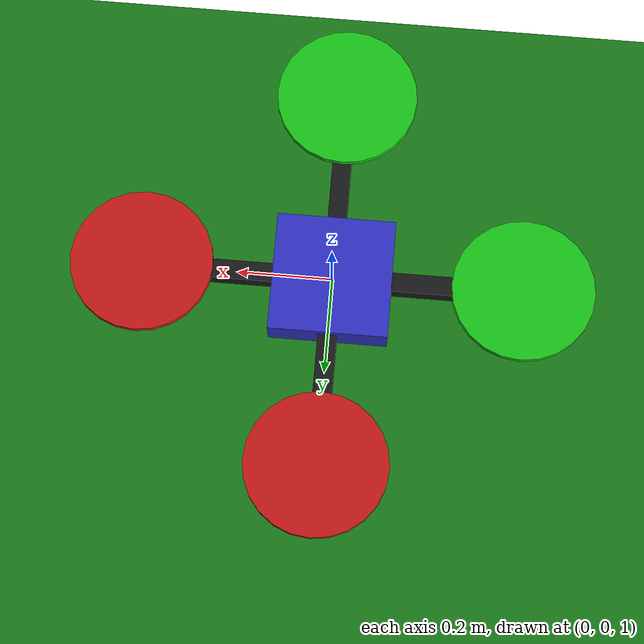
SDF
<?xml version="1.0"?>
<sdf version="1.9">
  <world name="quad_world">
    <physics name="1ms" type="ignored">
      <max_step_size>0.001</max_step_size>
      <real_time_factor>1.0</real_time_factor>
    </physics>

    <plugin
      filename="gz-sim-physics-system"
      name="gz::sim::systems::Physics">
    </plugin>

    <plugin
      filename="gz-sim-scene-broadcaster-system"
      name="gz::sim::systems::SceneBroadcaster">
    </plugin>

    <plugin
      filename="gz-sim-user-commands-system"
      name="gz::sim::systems::UserCommands">
    </plugin>

    <plugin
      filename="ignition-gazebo-sensors-system"
      name="ignition::gazebo::systems::Sensors">
      <render_engine>ogre2</render_engine>
    </plugin>

    <plugin
      filename="ignition-gazebo-apply-link-wrench-system"
      name="ignition::gazebo::systems::ApplyLinkWrench">
    </plugin>

     <plugin
      filename="ignition-gazebo-pose-publisher-system"
      name="ignition::gazebo::systems::PosePublisher">
      <publish_link_pose>true</publish_link_pose>
      <publish_model_pose>true</publish_model_pose>
      <use_pose_vector_msg>true</use_pose_vector_msg>
      <update_frequency>100</update_frequency>
    </plugin>

    <light name="sun" type="directional">
      <pose>0 0 10 0 0 0</pose>
      <diffuse>0.8 0.8 0.8 1</diffuse>
      <specular>0.2 0.2 0.2 1</specular>
      <direction>-0.5 0.1 -0.9</direction>
    </light>

    <model name="ground_plane">
      <static>true</static>
      <link name="link">
        <collision name="collision">
          <geometry>
            <plane>
              <normal>0 0 1</normal>
              <size>100 100</size>
            </plane>
          </geometry>
        </collision>
        <visual name="visual">
          <geometry>
            <plane>
              <normal>0 0 1</normal>
              <size>100 100</size>
            </plane>
          </geometry>
          <material>
            <ambient>0.1 0.5 0.1 1</ambient>
            <diffuse>0.1 0.5 0.1 1</diffuse>
            <specular>0.1 0.1 0.1 1</specular>
          </material>
        </visual>
      </link>
    </model>

    <include>
      <uri>model://simple_quadrotor</uri>
    </include>

  </world>
</sdf>

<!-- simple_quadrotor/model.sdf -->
<sdf version="1.9">
  <model name="simple_quadrotor">
    <pose>0 0 1 0 0 0</pose>
    <static>false</static>

    <plugin
      filename="QuadMotorPlugin"
      name="quad_motor_plugin::QuadMotorPlugin">

      <thrust_topic>/quad/rotor_thrusts</thrust_topic>

    </plugin>

    <link name="base_link">
      <!-- Approximate mass and inertia -->
      <inertial>
        <mass>1.5</mass>
        <inertia>
          <ixx>0.03</ixx>
          <iyy>0.03</iyy>
          <izz>0.05</izz>
          <ixy>0.0</ixy>
          <ixz>0.0</ixz>
          <iyz>0.0</iyz>
        </inertia>
      </inertial>

      <!-- Main body visual -->
      <visual name="body_visual">
        <geometry>
          <box>
            <size>0.25 0.25 0.08</size>
          </box>
        </geometry>
        <material>
          <ambient>0.2 0.2 0.8 1</ambient>
          <diffuse>0.2 0.2 0.8 1</diffuse>
        </material>
      </visual>

      <!-- Main body collision -->
      <collision name="body_collision">
        <geometry>
          <box>
            <size>0.25 0.25 0.08</size>
          </box>
        </geometry>
      </collision>

      <!-- Arm in x direction -->
      <visual name="arm_x_visual">
        <geometry>
          <box>
            <size>0.8 0.04 0.04</size>
          </box>
        </geometry>
        <material>
          <ambient>0.1 0.1 0.1 1</ambient>
          <diffuse>0.1 0.1 0.1 1</diffuse>
        </material>
      </visual>

      <!-- Arm in y direction -->
      <visual name="arm_y_visual">
        <geometry>
          <box>
            <size>0.04 0.8 0.04</size>
          </box>
        </geometry>
        <material>
          <ambient>0.1 0.1 0.1 1</ambient>
          <diffuse>0.1 0.1 0.1 1</diffuse>
        </material>
      </visual>

      <!-- Four simple rotor visuals -->
      <visual name="rotor_1_visual">
        <pose>0.4 0.0 0.03 0 0 0</pose>
        <geometry>
          <cylinder>
            <radius>0.15</radius>
            <length>0.015</length>
          </cylinder>
        </geometry>
        <material>
          <ambient>0.8 0.1 0.1 1</ambient>
          <diffuse>0.8 0.1 0.1 1</diffuse>
        </material>
      </visual>

      <visual name="rotor_2_visual">
        <pose>-0.4 0.0 0.03 0 0 0</pose>
        <geometry>
          <cylinder>
            <radius>0.15</radius>
            <length>0.015</length>
          </cylinder>
        </geometry>
        <material>
          <ambient>0.1 0.8 0.1 1</ambient>
          <diffuse>0.1 0.8 0.1 1</diffuse>
        </material>
      </visual>

      <visual name="rotor_3_visual">
        <pose>0.0 0.4 0.03 0 0 0</pose>
        <geometry>
          <cylinder>
            <radius>0.15</radius>
            <length>0.015</length>
          </cylinder>
        </geometry>
        <material>
          <ambient>0.8 0.1 0.1 1</ambient>
          <diffuse>0.8 0.1 0.1 1</diffuse>
        </material>

      </visual>

      <visual name="rotor_4_visual">
        <pose>0.0 -0.4 0.03 0 0 0</pose>
        <geometry>
          <cylinder>
            <radius>0.15</radius>
            <length>0.015</length>
          </cylinder>
        </geometry>
        <material>
          <ambient>0.1 0.8 0.1 1</ambient>
          <diffuse>0.1 0.8 0.1 1</diffuse>
        </material>
      </visual>

      <sensor name="imu_sensor" type="imu">
        <always_on>true</always_on>
        <update_rate>250</update_rate>
        <topic>/simple_quadrotor/imu</topic>

        <imu>
          <angular_velocity>
            <x>
              <noise type="gaussian">
                <mean>0.0</mean>
                <stddev>0.0005</stddev>
              </noise>
            </x>
            <y>
              <noise type="gaussian">
                <mean>0.0</mean>
                <stddev>0.0005</stddev>
              </noise>
            </y>
            <z>
              <noise type="gaussian">
                <mean>0.0</mean>
                <stddev>0.0005</stddev>
              </noise>
            </z>
          </angular_velocity>

          <linear_acceleration>
            <x>
              <noise type="gaussian">
                <mean>0.0</mean>
                <stddev>0.01</stddev>
              </noise>
            </x>
            <y>
              <noise type="gaussian">
                <mean>0.0</mean>
                <stddev>0.01</stddev>
              </noise>
            </y>
            <z>
              <noise type="gaussian">
                <mean>0.0</mean>
                <stddev>0.01</stddev>
              </noise>
            </z>
          </linear_acceleration>
        </imu>
      </sensor>
    </link>
  </model>
</sdf>
